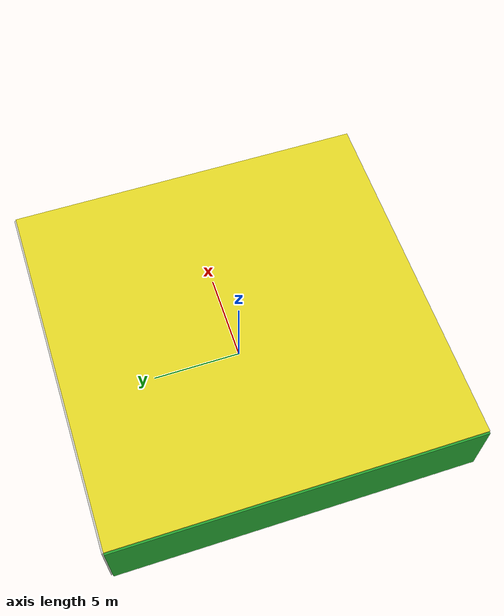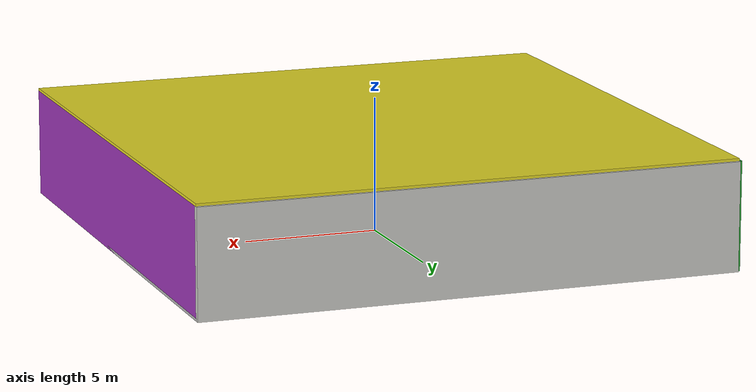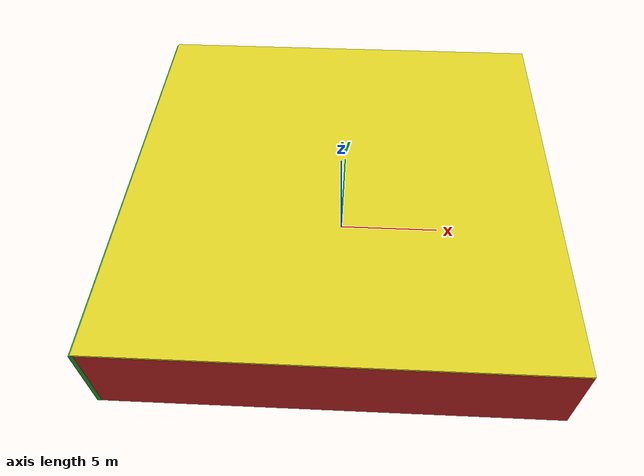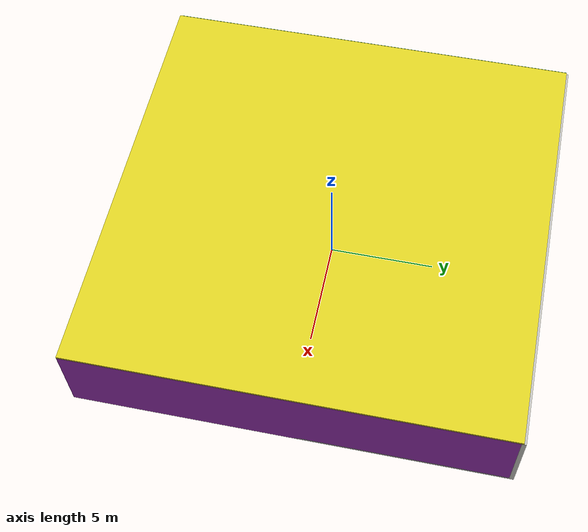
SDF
<sdf version="1.4">
 <world name="default">
  <physics type="ode">
   <max_step_size>0.001</max_step_size>
   <real_time_factor>1</real_time_factor>
   <real_time_update_rate>1000</real_time_update_rate>
   <gravity>0 0 -9.8</gravity>
  </physics>
  <scene><ambient>0.4 0.4 0.4 1</ambient><background>0.7 0.7 0.7 1</background><shadows>1</shadows></scene>
  <model name="Surrounding">
   <static>1</static>
   <link name="Ceiling">
    <collision name="Ceiling_Collision"><geometry><box><size>20 20 0.1</size></box></geometry></collision>
    <visual name="Ceiling_Visual">
     <geometry><box><size>20 20 0.1</size></box></geometry>
     <material>
      <script><uri>file://media/materials/scripts/gazebo.material</uri><name>Gazebo/YellowGlow</name></script>
     </material>
    </visual>
    <pose>0 0 4.05 0 0 0</pose>
   </link>
   <link name="Wall_South">
    <collision name="Wall_South_Collision">
     <geometry><box><size>20 0 4</size></box></geometry>
     <pose>0 0 2 0 -0 0</pose>
    </collision>
    <visual name="Wall_South_Visual">
     <pose>0 0 2 0 -0 0</pose>
     <geometry><box><size>20 0 4</size></box></geometry>
     <material>
      <script><uri>file://media/materials/scripts/gazebo.material</uri><name>Gazebo/RedBright</name></script>
     </material>
    </visual>
    <velocity_decay><linear>0</linear><angular>0</angular></velocity_decay>
    <pose>0 -10 0 0 -0 0</pose>
   </link>
   <link name="Wall_East">
    <collision name="Wall_21_Collision">
     <geometry><box><size>20 0 4</size></box></geometry>
     <pose>0 0 2 0 -0 0</pose>
    </collision>
    <visual name="Wall_21_Visual">
     <pose>0 0 2 0 -0 0</pose>
     <geometry><box><size>20 0 4</size></box></geometry>
     <material>
      <script><uri>file://media/materials/scripts/gazebo.material</uri><name>Gazebo/PurpleGlow</name></script>
     </material>
    </visual>
    <velocity_decay><linear>0</linear><angular>0</angular></velocity_decay>
    <pose>10 0 0 0 -0 1.5708</pose>
   </link>
   <link name="Wall_North">
    <collision name="Wall_22_Collision">
     <geometry><box><size>20 0.2 4</size></box></geometry>
     <pose>0 0 2 0 -0 0</pose>
    </collision>
    <visual name="Wall_22_Visual">
     <pose>0 0 2 0 -0 0</pose>
     <geometry><box><size>20 0.2 4</size></box></geometry>
     <material>
      <script><uri>file://media/materials/scripts/gazebo.material</uri><name>Gazebo/CeilingTiled</name></script>
     </material>
    </visual>
    <velocity_decay><linear>0</linear><angular>0</angular></velocity_decay>
    <pose>0 10 0 0 -0 0</pose>
   </link>
   <link name="Wall_West">
    <collision name="Wall_23_Collision">
     <geometry><box><size>20 0.2 4</size></box></geometry>
     <pose>0 0 2 0 -0 0</pose>
    </collision>
    <visual name="Wall_23_Visual">
     <pose>0 0 2 0 -0 0</pose>
     <geometry><box><size>20 0.2 4</size></box></geometry>
     <material>
      <script><uri>file://media/materials/scripts/gazebo.material</uri><name>Gazebo/Green</name></script>
     </material>
    </visual>
    <velocity_decay><linear>0</linear><angular>0</angular></velocity_decay>
    <pose>-10 0 0 0 0 -1.5708</pose>
   </link>
   <link name="Ground_link">
    <collision name="collision">
     <pose>0 0 .05 0 -0 0</pose>
     <geometry><box><size>20 20 0.1</size></box></geometry>
    </collision>
    <visual name="visual">
     <pose>0 0 .05 0 -0 0</pose>
     <geometry><box><size>20 20 0.1</size></box></geometry>
     <material>
      <script><uri>file://media/materials/scripts/gazebo.material</uri><name>Gazebo/PioneerBody</name></script>
     </material>
    </visual>
   </link>
   <static>1</static>
  </model>
  <spherical_coordinates>
   <surface_model>EARTH_WGS84</surface_model>
   <latitude_deg>0</latitude_deg>
   <longitude_deg>0</longitude_deg>
   <elevation>0</elevation>
   <heading_deg>0</heading_deg>
  </spherical_coordinates>
  <light name="lightball_0" type="diffuse">
   <diffuse>0.8 0.8 0.8 1</diffuse>
   <specular>0.2 0.2 0.2 1</specular>
   <attenuation>
    <range>100</range>
    <constant>0.7</constant>
    <linear>0.01</linear>
    <quadratic>0.001</quadratic>
   </attenuation>
   <direction>-0.5 0.1 -0.9</direction>
   <pose>-7.18556059622 4.41931149239 2.02257263988 0 0 0</pose>
  </light>
  <light name="lightball_1" type="diffuse">
   <diffuse>0.8 0.8 0.8 1</diffuse>
   <specular>0.2 0.2 0.2 1</specular>
   <attenuation>
    <range>100</range>
    <constant>0.7</constant>
    <linear>0.01</linear>
    <quadratic>0.001</quadratic>
   </attenuation>
   <direction>-0.5 0.1 -0.9</direction>
   <pose>8.66848510849 -5.50630321336 3.17405457908 0 0 0</pose>
  </light>
  <light name="lightball_2" type="diffuse">
   <diffuse>0.8 0.8 0.8 1</diffuse>
   <specular>0.2 0.2 0.2 1</specular>
   <attenuation>
    <range>100</range>
    <constant>0.7</constant>
    <linear>0.01</linear>
    <quadratic>0.001</quadratic>
   </attenuation>
   <direction>-0.5 0.1 -0.9</direction>
   <pose>-3.86284176658 -9.23664524507 1.56663978132 0 0 0</pose>
  </light>
  <light name="lightball_3" type="diffuse">
   <diffuse>0.8 0.8 0.8 1</diffuse>
   <specular>0.2 0.2 0.2 1</specular>
   <attenuation>
    <range>100</range>
    <constant>0.7</constant>
    <linear>0.01</linear>
    <quadratic>0.001</quadratic>
   </attenuation>
   <direction>-0.5 0.1 -0.9</direction>
   <pose>-4.72605477317 -3.80288927748 0.701489299638 0 0 0</pose>
  </light>
  <include><uri>model://cabinet</uri><pose>-7.42568962236 -8.16343538108 0 0 0 0.86976495779</pose></include>
  <include>
   <uri>model://robocup_3Dsim_goal</uri>
   <pose>-2.17546050786 -3.90520350584 0 0 0 2.6701063206</pose>
  </include>
  <include><uri>model://cabinet</uri><pose>-2.0273974184 6.7617414382 0 0 0 1.59994583754</pose></include>
  <include><uri>model://cabinet</uri><pose>0.817833771975 -3.80661156171 0 0 0 1.0456412265</pose></include>
  <include>
   <uri>model://textured_shapes</uri>
   <pose>1.53389168398 2.03340206715 0 0 0 1.98610171465</pose>
  </include>
 </world>
</sdf>

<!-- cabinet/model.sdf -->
<sdf version="1.5">
  <model name="cabinet">
    <static>true</static>
    <link name="cabinet_bottom_plate">
      <inertial>
        <pose>0 0 -1 0 0 0</pose>
        <inertia>
          <ixx>2.050000</ixx>
          <ixy>0</ixy>
          <ixz>0</ixz>
          <iyy>2.050000</iyy>
          <iyz>0</iyz>
          <izz>2.050000</izz>
        </inertia>
        <mass>25.000000</mass>
      </inertial>
      <collision name="cabinet_bottom_plate_geom">
        <pose>0 0 0.010000 0 0 0</pose>
        <geometry>
          <box>
            <size>0.450000 0.450000 0.020000</size>
          </box>
        </geometry>
      </collision>
      <visual name="cabinet_bottom_plate_geom_visual">
        <pose>0 0 0.010000 0 0 0</pose>
        <geometry>
          <box>
            <size>0.450000 0.450000 0.020000</size>
          </box>
        </geometry>
        <material>
          <script>
            <uri>model://media/materials/scripts/gazebo.material</uri>
            <name>Gazebo/Wood</name>
          </script>
        </material>
      </visual>
      <collision name="cabinet_bottom_plate_geom_cabinet_back_plate">
        <pose>0.235000 0 0.510000 0 0 0</pose>
        <geometry>
          <box>
            <size>0.020000 0.450000 1.020000</size>
          </box>
        </geometry>
      </collision>
      <visual name="cabinet_bottom_plate_geom_cabinet_back_plate_visual">
        <pose>0.235000 0 0.510000 0 0 0</pose>
        <geometry>
          <box>
            <size>0.020000 0.450000 1.020000</size>
          </box>
        </geometry>
        <material>
          <script>
            <uri>model://media/materials/scripts/gazebo.material</uri>
            <name>Gazebo/Wood</name>
          </script>
        </material>
      </visual>
      <collision name="cabinet_bottom_plate_geom_cabinet_left_plate">
        <pose>0 0.235000 0.510000 0 0 0</pose>
        <geometry>
          <box>
            <size>0.450000 0.020000 1.020000</size>
          </box>
        </geometry>
      </collision>
      <visual name="cabinet_bottom_plate_geom_cabinet_left_plate_visual">
        <pose>0 0.235000 0.510000 0 0 0</pose>
        <geometry>
          <box>
            <size>0.450000 0.020000 1.020000</size>
          </box>
        </geometry>
        <material>
          <script>
            <uri>model://media/materials/scripts/gazebo.material</uri>
            <name>Gazebo/Wood</name>
          </script>
        </material>
      </visual>
      <collision name="cabinet_bottom_plate_geom_cabinet_middle_plate">
        <pose>0 0 0.510000 0 0 0</pose>
        <geometry>
          <box>
            <size>0.450000 0.450000 0.020000</size>
          </box>
        </geometry>
      </collision>
      <visual name="cabinet_bottom_plate_geom_cabinet_middle_plate_visual">
        <pose>0 0 0.510000 0 0 0</pose>
        <geometry>
          <box>
            <size>0.450000 0.450000 0.020000</size>
          </box>
        </geometry>
        <material>
          <script>
            <uri>model://media/materials/scripts/gazebo.material</uri>
            <name>Gazebo/Wood</name>
          </script>
        </material>
      </visual>
      <collision name="cabinet_bottom_plate_geom_cabinet_right_plate">
        <pose>0 -0.235000 0.510000 0 0 0</pose>
        <geometry>
          <box>
            <size>0.450000 0.020000 1.020000</size>
          </box>
        </geometry>
      </collision>
      <visual name="cabinet_bottom_plate_geom_cabinet_right_plate_visual">
        <pose>0 -0.235000 0.510000 0 0 0</pose>
        <geometry>
          <box>
            <size>0.450000 0.020000 1.020000</size>
          </box>
        </geometry>
        <material>
          <script>
            <uri>model://media/materials/scripts/gazebo.material</uri>
            <name>Gazebo/Wood</name>
          </script>
        </material>
      </visual>
      <collision name="cabinet_bottom_plate_geom_cabinet_top_plate">
        <pose>0 0 1.010000 0 0 0</pose>
        <geometry>
          <box>
            <size>0.450000 0.450000 0.020000</size>
          </box>
        </geometry>
      </collision>
      <visual name="cabinet_bottom_plate_geom_cabinet_top_plate_visual">
        <pose>0 0 1.010000 0 0 0</pose>
        <geometry>
          <box>
            <size>0.450000 0.450000 0.020000</size>
          </box>
        </geometry>
        <material>
          <script>
            <uri>model://media/materials/scripts/gazebo.material</uri>
            <name>Gazebo/Wood</name>
          </script>
        </material>
      </visual>
    </link>
  </model>
</sdf>

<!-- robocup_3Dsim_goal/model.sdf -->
<sdf version="1.5">
  <model name="robocup_3d_goal">
    <static>true</static>
    <link name="left_post">
      <pose>0 1.05 0.45 0 0 0</pose>
      <collision name="collision">
        <geometry>
          <cylinder>
            <radius>0.05</radius>
            <length>0.9</length>
          </cylinder>
        </geometry>
      </collision>
      <visual name="visual">
        <geometry>
          <cylinder>
            <radius>0.05</radius>
            <length>0.9</length>
          </cylinder>
        </geometry>
        <material>
          <script>
            <uri>file://media/materials/scripts/gazebo.material</uri>
            <name>Gazebo/ZincYellow</name>
          </script>
        </material>
      </visual>
    </link>
    <link name="left_support_horiz_lower">
      <pose>0.30 1.05 0.01 0 0 0</pose>
      <collision name="collision">
        <geometry>
          <box>
            <size>0.50 0.02 0.02</size>
          </box>
        </geometry>
      </collision>
      <visual name="visual">
        <geometry>
          <box>
            <size>0.50 0.02 0.02</size>
          </box>
        </geometry>
        <material>
          <script>
            <uri>file://media/materials/scripts/gazebo.material</uri>
            <name>Gazebo/White</name>
          </script>
        </material>
      </visual>
    </link>
    <link name="left_support_horiz_upper">
      <pose>0.30 1.05 0.79 0 0 0</pose>
      <collision name="collision">
        <geometry>
          <box>
            <size>0.50 0.02 0.02</size>
          </box>
        </geometry>
      </collision>
      <visual name="visual">
        <geometry>
          <box>
            <size>0.50 0.02 0.02</size>
          </box>
        </geometry>
        <material>
          <script>
            <uri>file://media/materials/scripts/gazebo.material</uri>
            <name>Gazebo/White</name>
          </script>
        </material>
      </visual>
    </link>
    <link name="left_support_vertical">
      <pose>0.56 1.05 0.4 0 1.5708 0</pose>
      <collision name="collision">
        <geometry>
          <box>
            <size>0.80 0.02 0.02</size>
          </box>
        </geometry>
      </collision>
      <visual name="visual">
        <geometry>
          <box>
            <size>0.80 0.02 0.02</size>
          </box>
        </geometry>
        <material>
          <script>
            <uri>file://media/materials/scripts/gazebo.material</uri>
            <name>Gazebo/White</name>
          </script>
        </material>
      </visual>
    </link>
    <link name="right_support_horiz_lower">
      <pose>0.30 -1.05 0.01 0 0 0</pose>
      <collision name="collision">
        <geometry>
          <box>
            <size>0.50 0.02 0.02</size>
          </box>
        </geometry>
      </collision>
      <visual name="visual">
        <geometry>
          <box>
            <size>0.50 0.02 0.02</size>
          </box>
        </geometry>
        <material>
          <script>
            <uri>file://media/materials/scripts/gazebo.material</uri>
            <name>Gazebo/White</name>
          </script>
        </material>
      </visual>
    </link>
    <link name="right_support_horiz_upper">
      <pose>0.30 -1.05 0.79 0 0 0</pose>
      <collision name="collision">
        <geometry>
          <box>
            <size>0.50 0.02 0.02</size>
          </box>
        </geometry>
      </collision>
      <visual name="visual">
        <geometry>
          <box>
            <size>0.50 0.02 0.02</size>
          </box>
        </geometry>
        <material>
          <script>
            <uri>file://media/materials/scripts/gazebo.material</uri>
            <name>Gazebo/White</name>
          </script>
        </material>
      </visual>
    </link>
    <link name="right_support_vertical">
      <pose>0.56 -1.05 0.4 0 1.5708 0</pose>
      <collision name="collision">
        <geometry>
          <box>
            <size>0.80 0.02 0.02</size>
          </box>
        </geometry>
      </collision>
      <visual name="visual">
        <geometry>
          <box>
            <size>0.80 0.02 0.02</size>
          </box>
        </geometry>
        <material>
          <script>
            <uri>file://media/materials/scripts/gazebo.material</uri>
            <name>Gazebo/White</name>
          </script>
        </material>
      </visual>
    </link>
    <link name="center_support_horiz_lower">
      <pose>0.56 0 0.01 0 1.5708 0</pose>
      <collision name="collision">
        <geometry>
          <box>
            <size>0.02 2.08 0.02</size>
          </box>
        </geometry>
      </collision>
      <visual name="visual">
        <geometry>
          <box>
            <size>0.02 2.08 0.02</size>
          </box>
        </geometry>
        <material>
          <script>
            <uri>file://media/materials/scripts/gazebo.material</uri>
            <name>Gazebo/White</name>
          </script>
        </material>
      </visual>
    </link>
    <link name="center_support_horiz_upper">
      <pose>0.56 0 0.79 0 1.5708 0</pose>
      <collision name="collision">
        <geometry>
          <box>
            <size>0.02 2.08 0.02</size>
          </box>
        </geometry>
      </collision>
      <visual name="visual">
        <geometry>
          <box>
            <size>0.02 2.08 0.02</size>
          </box>
        </geometry>
        <material>
          <script>
            <uri>file://media/materials/scripts/gazebo.material</uri>
            <name>Gazebo/White</name>
          </script>
        </material>
      </visual>
    </link>
    <link name="right_post">
      <pose>0 -1.05 0.45 0 0 0</pose>
      <collision name="collision">
        <geometry>
          <cylinder>
            <radius>0.05</radius>
            <length>0.9</length>
          </cylinder>
        </geometry>
      </collision>
      <visual name="visual">
        <geometry>
          <cylinder>
            <radius>0.05</radius>
            <length>0.9</length>
          </cylinder>
        </geometry>
        <material>
          <script>
            <uri>file://media/materials/scripts/gazebo.material</uri>
            <name>Gazebo/ZincYellow</name>
          </script>
        </material>
      </visual>
    </link>
    <link name="crossbar">
      <pose>0 0 0.85 1.57 1.57 0</pose>
      <collision name="collision">
        <geometry>
          <cylinder>
            <radius>0.05</radius>
            <length>2.0</length>
          </cylinder>
        </geometry>
      </collision>
      <visual name="visual">
        <geometry>
          <cylinder>
            <radius>0.05</radius>
            <length>2.0</length>
          </cylinder>
        </geometry>
        <material>
          <script>
            <uri>file://media/materials/scripts/gazebo.material</uri>
            <name>Gazebo/ZincYellow</name>
          </script>
        </material>
      </visual>
    </link>
    <link name="center_net">
      <pose>0.56 0 0.40 0 0 0</pose>
      <collision name="collision">
        <geometry>
          <box>
            <size>0.01 2.1 0.80</size>
          </box>
        </geometry>
      </collision>
      <visual name="visual">
        <geometry>
          <box>
            <size>0.01 2.1 0.80</size>
          </box>
        </geometry>
        <material>
          <script>
            <uri>model://../model_source/models/robocup09_spl_field/materials/scripts/</uri>
            <uri>model://../model_source/models/robocup09_spl_field/materials/textures/</uri>
            <name>RoboCup/Net</name>
          </script>
        </material>
      </visual>
    </link>
    <link name="left_net">
      <pose>0.30 1.05 0.40 0 0 0</pose>
      <collision name="collision">
        <geometry>
          <box>
            <size>0.50 0.01 0.76</size>
          </box>
        </geometry>
      </collision>
      <visual name="visual">
        <geometry>
          <box>
            <size>0.50 0.01 0.76</size>
          </box>
        </geometry>
        <material>
          <script>
            <uri>model://../model_source/models/robocup09_spl_field/materials/scripts/</uri>
            <uri>model://../model_source/models/robocup09_spl_field/materials/textures/</uri>
            <name>RoboCup/Net</name>
          </script>
        </material>
      </visual>
    </link>
    <link name="right_net">
      <pose>0.30 -1.05 0.40 0 0 0</pose>
      <collision name="collision">
        <geometry>
          <box>
            <size>0.50 0.01 0.76</size>
          </box>
        </geometry>
      </collision>
      <visual name="visual">
        <geometry>
          <box>
            <size>0.50 0.01 0.76</size>
          </box>
        </geometry>
        <material>
          <script>
            <uri>model://../model_source/models/robocup09_spl_field/materials/scripts/</uri>
            <uri>model://../model_source/models/robocup09_spl_field/materials/textures/</uri>
            <name>RoboCup/Net</name>
          </script>
        </material>
      </visual>
    </link>
  </model>
</sdf>

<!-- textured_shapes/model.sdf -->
<sdf version="1.6">
  <model name="textured_shapes">
    <pose>0 0 0.5 0 0 0</pose>
    <link name="box">
      <pose>0 -1.5 0 0 0 0</pose>
      <collision name="collision">
        <geometry>
          <box>
            <size>1 1 1</size>
          </box>
        </geometry>
      </collision>
      <visual name="visual">
        <geometry>
          <box>
            <size>1 1 1</size>
          </box>
        </geometry>
        <material>
          <script>
            <uri>model://../model_source/models/textured_shapes/materials/scripts</uri>
            <uri>model://../model_source/models/textured_shapes/materials/textures</uri>
            <name>TexturedShape/Squares</name>
          </script>
        </material>
      </visual>
    </link>
    <link name="sphere">
      <collision name="collision">
        <geometry>
          <sphere>
            <radius>0.5</radius>
          </sphere>
        </geometry>
      </collision>
      <visual name="visual">
        <geometry>
          <sphere>
            <radius>0.5</radius>
          </sphere>
        </geometry>
        <material>
          <script>
            <uri>model://../model_source/models/textured_shapes/materials/scripts</uri>
            <uri>model://../model_source/models/textured_shapes/materials/textures</uri>
            <name>TexturedShape/Squares</name>
          </script>
        </material>
      </visual>
    </link>
    <link name="cylinder">
      <pose>0 1.5 0 0 0 0</pose>
      <collision name="collision">
        <geometry>
          <cylinder>
            <radius>0.5</radius>
            <length>1</length>
          </cylinder>
        </geometry>
      </collision>
      <visual name="visual">
        <geometry>
          <cylinder>
            <radius>0.5</radius>
            <length>1</length>
          </cylinder>
        </geometry>
        <material>
          <script>
            <uri>model://../model_source/models/textured_shapes/materials/scripts</uri>
            <uri>model://../model_source/models/textured_shapes/materials/textures</uri>
            <name>TexturedShape/Squares</name>
          </script>
        </material>
      </visual>
    </link>
  </model>
</sdf>
